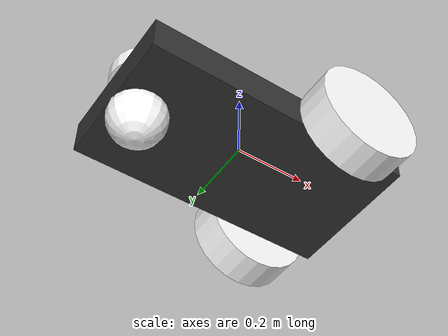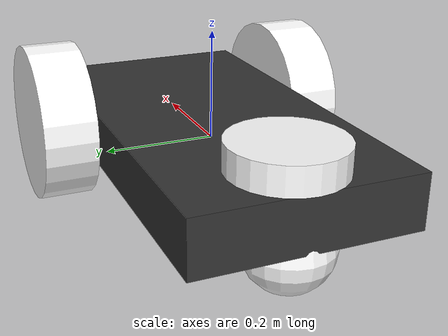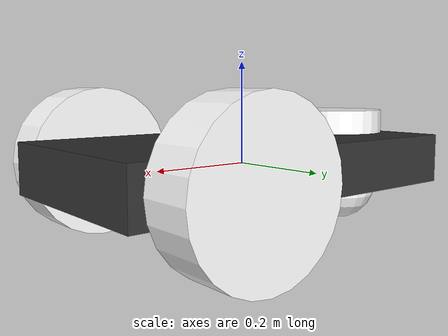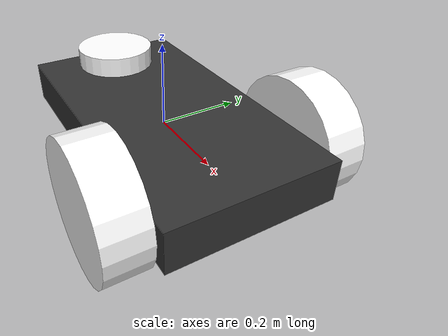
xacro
<?xml version="1.0" ?>

<robot name = "bot">

    <link name="base">
        <visual>
        <geometry>
            <box size="0.75 0.4 0.1"/>
        </geometry>
        <material name="gray">
            <color rgba=".2 .2 .2 1" />
        </material>
        </visual>

        <inertial>
            <mass value="1" />
            <inertia ixx="0.01" ixy="0.0" ixz="0" iyy="0.01" iyz="0" izz="0.01" />
        </inertial>

        <collision>
        <geometry>
            <box size="0.75 0.4 0.1"/>
        </geometry>
        </collision>

    </link>

    <link name="wheel_right_link">
        <inertial>
                <mass value="2" />
                <inertia ixx="0.01" ixy="0.0" ixz="0"
                iyy="0.01" iyz="0" izz="0.01" />
        </inertial>

        <visual>
            <geometry>
              <cylinder radius="0.15" length="0.1"/>
            </geometry>
            <material name="white">
            <color rgba="1 1 1 1"/>
            </material>
        </visual>

        <collision>
            <geometry>
              <cylinder radius="0.15" length="0.1"/>
            </geometry>
          <contact_coefficients mu="1" kp="1e+13" kd="1.0"/>
        </collision>
    </link>

    <joint name="wheel_right_joint" type="continuous">
        <origin xyz="0.2 0.25 0.0" rpy="1.57 0.0 0.0"/>
        <parent link="base"/>
        <child link="wheel_right_link"/>
        <axis xyz="0.0 0.0 1.0"/>
    </joint>

    <link name="wheel_left_link">
        <inertial>
            <mass value="2" />
            <inertia ixx="0.01" ixy="0.0" ixz="0"
                iyy="0.01" iyz="0" izz="0.01" />
        </inertial>

        <visual>
          <geometry>
              <cylinder radius="0.15" length="0.1"/>
          </geometry>
          <material name="white">
            <color rgba="1 1 1 1"/>
          </material>
        </visual>

        <collision>
          <geometry>
              <cylinder radius="0.15" length="0.1"/>
          </geometry>
          <contact_coefficients mu="1" kp="1e+13" kd="1.0"/>
        </collision>
    </link>

    <joint name="wheel_left_joint" type="continuous">
        <origin xyz="0.2 -0.25 0.0" rpy="1.57 0.0 0.0"/>
        <parent link="base"/>
        <child link="wheel_left_link"/>
        <axis xyz="0.0 0.0 1.0"/>
    </joint>

    <link name="caster">
        <inertial>
                <mass value="1" />
                <inertia ixx="0.01" ixy="0.0" ixz="0"
                iyy="0.01" iyz="0" izz="0.01" />
        </inertial>

        <visual>
          <geometry>
            <sphere radius=".08" />
          </geometry>
          <material name="white" />
        </visual>

        <collision>
          <origin/>
          <geometry>
            <sphere radius=".08" />
          </geometry>
        </collision>
    </link>

    <joint name="caster_joint" type="continuous">
        <origin xyz="-0.3 0.0 -0.07" rpy="0.0 0.0 0.0"/>
        <axis xyz="0 0 1" />
        <parent link="base"/>
        <child link="caster"/>
    </joint>

    <link name="lidar">
        <inertial>
                <mass value="0.5" />
                <inertia ixx="0.01" ixy="0.0" ixz="0"
                iyy="0.01" iyz="0" izz="0.01" />
        </inertial>

        <visual>
          <geometry>
            <cylinder radius="0.1" length="0.05"/>
          </geometry>
          <material name="white">
            <color rgba="1 1 1 1"/>
          </material>
        </visual>

        <collision>
          <geometry>
              <box size="0.1 0.1 0.1"/>
          </geometry>
        </collision>
    </link>

    <joint name="lidar_joint" type="fixed">
        <origin xyz="-0.285 0 0.075" rpy="0 0.0 1.57"/>
        <parent link="base"/>
        <child link="lidar"/>
        <axis xyz="0.0 0.0 1.0"/>

    </joint>

    <!--http://wiki.ros.org/simulator_gazebo/Tutorials/ListOfMaterials-->
    <gazebo reference="base">
        <material>Gazebo/WhiteGlow</material>
    </gazebo>
    <gazebo reference="wheel_left_link">
        <material>Gazebo/SkyBlue</material>
    </gazebo>
    <gazebo reference="wheel_right_link">
        <material>Gazebo/SkyBlue </material>
    </gazebo>
    <gazebo reference="caster">
        <material>Gazebo/Grey</material>
    </gazebo>
    <gazebo reference="lidar">
        <material>Gazebo/Blue</material>
    </gazebo>
    <gazebo reference="camera">
        <material>Gazebo/Red</material>
    </gazebo>

    <!-- differential robot-->
    <gazebo>
        <plugin filename="libgazebo_ros_diff_drive.so" name="gazebo_base_controller">
          <odometry_frame>odom</odometry_frame>
          <commandTopic>cmd_vel</commandTopic>
          <publish_odom>true</publish_odom>
          <publish_odom_tf>true</publish_odom_tf>
          <update_rate>15.0</update_rate>

          <left_joint>wheel_left_joint</left_joint>
          <right_joint>wheel_right_joint</right_joint>

          <wheel_separation>0.5</wheel_separation>
          <wheel_diameter>0.3</wheel_diameter>
          <max_wheel_acceleration>0.7</max_wheel_acceleration>
          <max_wheel_torque>8</max_wheel_torque>
          <robotBaseFrame>base</robotBaseFrame>
        </plugin>
    </gazebo>

    <!--lidar plugin-->
    <gazebo reference="lidar">
      <sensor name="lidar" type="ray">
       <visualize>true</visualize>
        <update_rate>12.0</update_rate>
        <plugin filename="libgazebo_ros_ray_sensor.so" name="gazebo_lidar">
        <output_type>sensor_msgs/LaserScan</output_type>
        <frame_name>lidar</frame_name>
        </plugin>
        <ray>
          <scan>
            <horizontal>
              <samples>360</samples>
              <resolution>1</resolution>
              <min_angle>0.00</min_angle>
              <max_angle>3.14</max_angle>
            </horizontal>
          </scan>
          <range>
            <min>0.120</min>
            <max>3.5</max>
            <resolution>0.015</resolution>
          </range>
        </ray>
      </sensor>
    </gazebo>

</robot>
